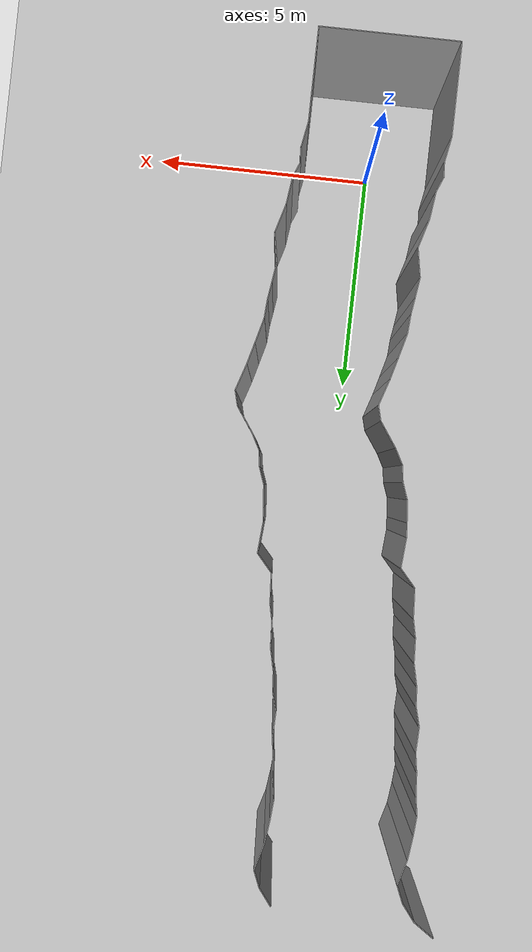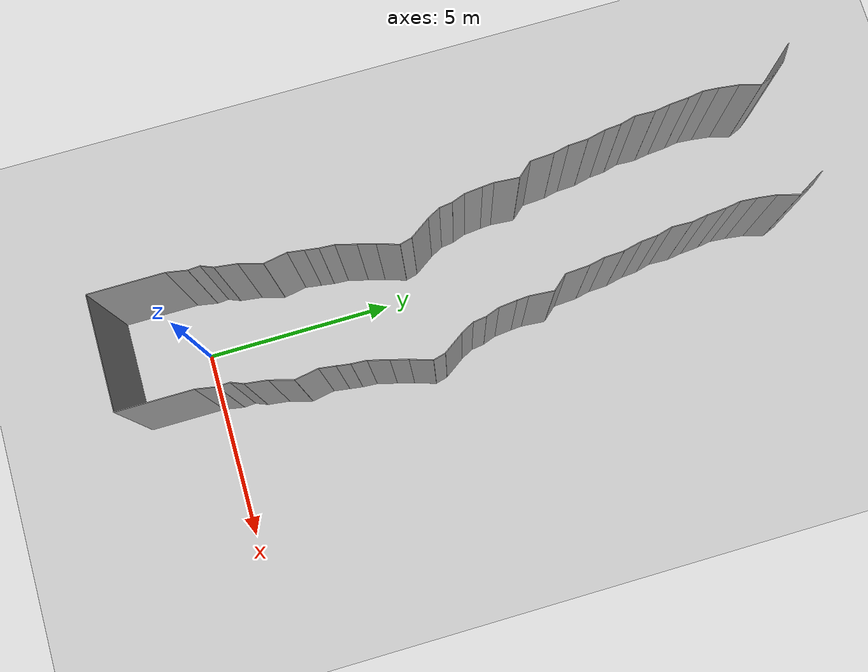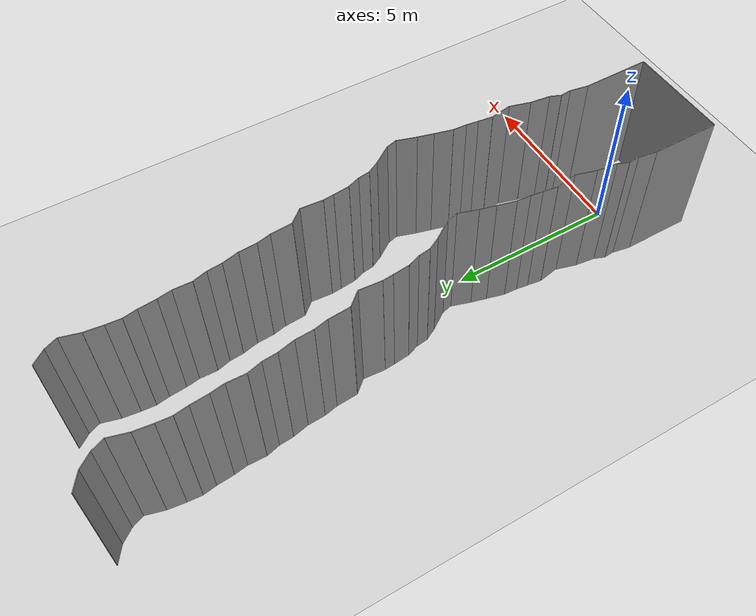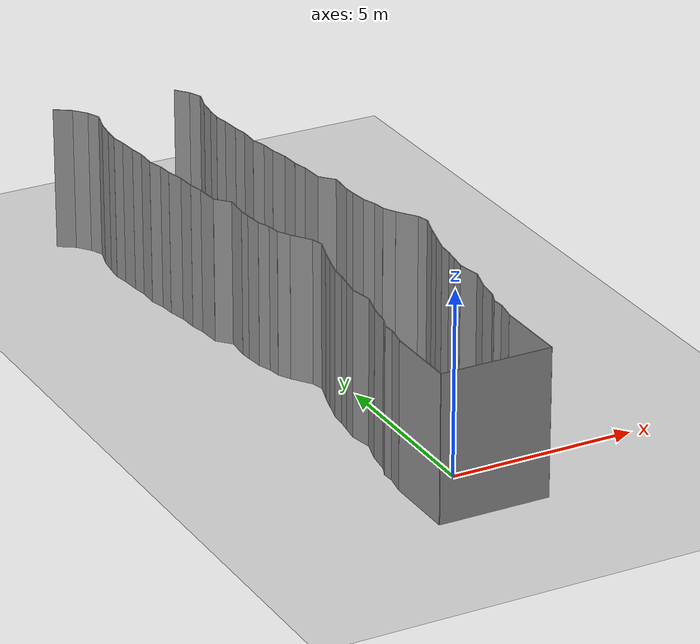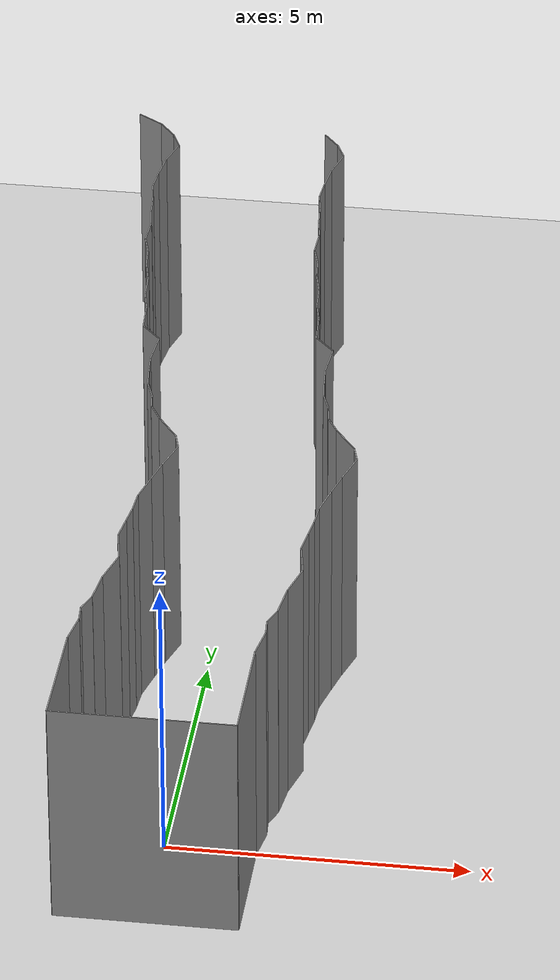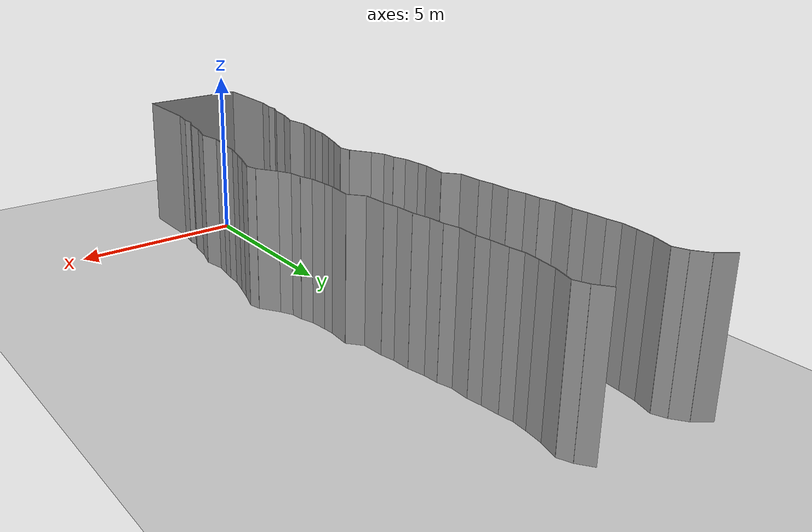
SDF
<sdf version="1.6">
 <world name="default">
  <model name="ground_plane">
   <static>1</static>
   <link name="link">
    <collision name="collision">
     <geometry><plane><normal>0 0 1</normal><size>200 200</size></plane></geometry>
     <surface><friction><ode><mu>100</mu><mu2>50</mu2></ode></friction></surface>
    </collision>
    <visual name="visual">
     <cast_shadows>0</cast_shadows>
     <geometry><plane><normal>0 0 1</normal><size>200 200</size></plane></geometry>
     <material>
      <script><uri>file://media/materials/scripts/gazebo.material</uri><name>Gazebo/Grey</name></script>
     </material>
    </visual>
   </link>
   <pose>0 100 0 0 -0 0</pose>
  </model>
  <model name="wall_back">
   <static>1</static>
   <pose>0.0 -2 2 0.0 0 0.0</pose>
   <link name="link">
    <collision name="collision"><geometry><box><size>3 0.02 4</size></box></geometry></collision>
    <visual name="visual">
     <material>
      <script><name>Gazebo/Grey</name><uri>file://media/materials/scripts/gazebo.material</uri></script>
     </material>
     <geometry><box><size>3 0.02 4</size></box></geometry>
    </visual>
   </link>
  </model>
  <model name="wall_left">
   <static>1</static>
   <pose>1.5 -1 2 0 0 0.00</pose>
   <link name="link">
    <collision name="collision"><geometry><box><size>0.02 2 4</size></box></geometry></collision>
    <visual name="visual">
     <material>
      <script><name>Gazebo/Grey</name><uri>file://media/materials/scripts/gazebo.material</uri></script>
     </material>
     <geometry><box><size>0.02 2 4</size></box></geometry>
    </visual>
   </link>
  </model>
  <model name="wall_right">
   <static>1</static>
   <pose>-1.5 -1 2 0 0 0.00</pose>
   <link name="link">
    <collision name="collision"><geometry><box><size>0.02 2 4</size></box></geometry></collision>
    <visual name="visual">
     <material>
      <script><name>Gazebo/Grey</name><uri>file://media/materials/scripts/gazebo.material</uri></script>
     </material>
     <geometry><box><size>0.02 2 4</size></box></geometry>
    </visual>
   </link>
  </model>
  <model name="wall_0">
   <static>1</static>
   <pose>-1.4510614008440241 0.27226961258177046 2 0 0 -0.17784414263756346</pose>
   <link name="link">
    <collision name="collision"><geometry><box><size>0.02 0.553265680927 4</size></box></geometry></collision>
    <visual name="visual">
     <material>
      <script><name>Gazebo/Grey</name><uri>file://media/materials/scripts/gazebo.material</uri></script>
     </material>
     <geometry><box><size>0.02 0.553265680927 4</size></box></geometry>
    </visual>
   </link>
  </model>
  <model name="wall_1">
   <static>1</static>
   <pose>1.5489385991559759 0.27226961258177046 2 0 0 -0.17784414263756346</pose>
   <link name="link">
    <collision name="collision"><geometry><box><size>0.02 0.553265680927 4</size></box></geometry></collision>
    <visual name="visual">
     <material>
      <script><name>Gazebo/Grey</name><uri>file://media/materials/scripts/gazebo.material</uri></script>
     </material>
     <geometry><box><size>0.02 0.553265680927 4</size></box></geometry>
    </visual>
   </link>
  </model>
  <model name="wall_2">
   <static>1</static>
   <pose>-1.4131889546459946 0.7013423824053996 2 0 0 0.0704567162158204</pose>
   <link name="link">
    <collision name="collision"><geometry><box><size>0.02 0.314386321982 4</size></box></geometry></collision>
    <visual name="visual">
     <material>
      <script><name>Gazebo/Grey</name><uri>file://media/materials/scripts/gazebo.material</uri></script>
     </material>
     <geometry><box><size>0.02 0.314386321982 4</size></box></geometry>
    </visual>
   </link>
  </model>
  <model name="wall_3">
   <static>1</static>
   <pose>1.5868110453540054 0.7013423824053996 2 0 0 0.0704567162158204</pose>
   <link name="link">
    <collision name="collision"><geometry><box><size>0.02 0.314386321982 4</size></box></geometry></collision>
    <visual name="visual">
     <material>
      <script><name>Gazebo/Grey</name><uri>file://media/materials/scripts/gazebo.material</uri></script>
     </material>
     <geometry><box><size>0.02 0.314386321982 4</size></box></geometry>
    </visual>
   </link>
  </model>
  <model name="wall_4">
   <static>1</static>
   <pose>-1.360147717933627 1.015774620193739 2 0 0 -0.3862669164413871</pose>
   <link name="link">
    <collision name="collision"><geometry><box><size>0.02 0.340333274566 4</size></box></geometry></collision>
    <visual name="visual">
     <material>
      <script><name>Gazebo/Grey</name><uri>file://media/materials/scripts/gazebo.material</uri></script>
     </material>
     <geometry><box><size>0.02 0.340333274566 4</size></box></geometry>
    </visual>
   </link>
  </model>
  <model name="wall_5">
   <static>1</static>
   <pose>1.639852282066373 1.015774620193739 2 0 0 -0.3862669164413871</pose>
   <link name="link">
    <collision name="collision"><geometry><box><size>0.02 0.340333274566 4</size></box></geometry></collision>
    <visual name="visual">
     <material>
      <script><name>Gazebo/Grey</name><uri>file://media/materials/scripts/gazebo.material</uri></script>
     </material>
     <geometry><box><size>0.02 0.340333274566 4</size></box></geometry>
    </visual>
   </link>
  </model>
  <model name="wall_6">
   <static>1</static>
   <pose>-1.2584821857065456 1.467698916604298 2 0 0 -0.12693447514914025</pose>
   <link name="link">
    <collision name="collision"><geometry><box><size>0.02 0.593364266375 4</size></box></geometry></collision>
    <visual name="visual">
     <material>
      <script><name>Gazebo/Grey</name><uri>file://media/materials/scripts/gazebo.material</uri></script>
     </material>
     <geometry><box><size>0.02 0.593364266375 4</size></box></geometry>
    </visual>
   </link>
  </model>
  <model name="wall_7">
   <static>1</static>
   <pose>1.7415178142934544 1.467698916604298 2 0 0 -0.12693447514914025</pose>
   <link name="link">
    <collision name="collision"><geometry><box><size>0.02 0.593364266375 4</size></box></geometry></collision>
    <visual name="visual">
     <material>
      <script><name>Gazebo/Grey</name><uri>file://media/materials/scripts/gazebo.material</uri></script>
     </material>
     <geometry><box><size>0.02 0.593364266375 4</size></box></geometry>
    </visual>
   </link>
  </model>
  <model name="wall_8">
   <static>1</static>
   <pose>-1.133552409762259 2.0664932754414114 2 0 0 -0.2794284009162872</pose>
   <link name="link">
    <collision name="collision"><geometry><box><size>0.02 0.633572506954 4</size></box></geometry></collision>
    <visual name="visual">
     <material>
      <script><name>Gazebo/Grey</name><uri>file://media/materials/scripts/gazebo.material</uri></script>
     </material>
     <geometry><box><size>0.02 0.633572506954 4</size></box></geometry>
    </visual>
   </link>
  </model>
  <model name="wall_9">
   <static>1</static>
   <pose>1.866447590237741 2.0664932754414114 2 0 0 -0.2794284009162872</pose>
   <link name="link">
    <collision name="collision"><geometry><box><size>0.02 0.633572506954 4</size></box></geometry></collision>
    <visual name="visual">
     <material>
      <script><name>Gazebo/Grey</name><uri>file://media/materials/scripts/gazebo.material</uri></script>
     </material>
     <geometry><box><size>0.02 0.633572506954 4</size></box></geometry>
    </visual>
   </link>
  </model>
  <model name="wall_10">
   <static>1</static>
   <pose>-1.1017332336920902 2.681833785299214 2 0 0 0.17684936663808962</pose>
   <link name="link">
    <collision name="collision"><geometry><box><size>0.02 0.631532836457 4</size></box></geometry></collision>
    <visual name="visual">
     <material>
      <script><name>Gazebo/Grey</name><uri>file://media/materials/scripts/gazebo.material</uri></script>
     </material>
     <geometry><box><size>0.02 0.631532836457 4</size></box></geometry>
    </visual>
   </link>
  </model>
  <model name="wall_11">
   <static>1</static>
   <pose>1.8982667663079098 2.681833785299214 2 0 0 0.17684936663808962</pose>
   <link name="link">
    <collision name="collision"><geometry><box><size>0.02 0.631532836457 4</size></box></geometry></collision>
    <visual name="visual">
     <material>
      <script><name>Gazebo/Grey</name><uri>file://media/materials/scripts/gazebo.material</uri></script>
     </material>
     <geometry><box><size>0.02 0.631532836457 4</size></box></geometry>
    </visual>
   </link>
  </model>
  <model name="wall_12">
   <static>1</static>
   <pose>-1.1270328265631628 3.20628827869749 2 0 0 -0.14068891273038736</pose>
   <link name="link">
    <collision name="collision"><geometry><box><size>0.02 0.431489530005 4</size></box></geometry></collision>
    <visual name="visual">
     <material>
      <script><name>Gazebo/Grey</name><uri>file://media/materials/scripts/gazebo.material</uri></script>
     </material>
     <geometry><box><size>0.02 0.431489530005 4</size></box></geometry>
    </visual>
   </link>
  </model>
  <model name="wall_13">
   <static>1</static>
   <pose>1.8729671734368372 3.20628827869749 2 0 0 -0.14068891273038736</pose>
   <link name="link">
    <collision name="collision"><geometry><box><size>0.02 0.431489530005 4</size></box></geometry></collision>
    <visual name="visual">
     <material>
      <script><name>Gazebo/Grey</name><uri>file://media/materials/scripts/gazebo.material</uri></script>
     </material>
     <geometry><box><size>0.02 0.431489530005 4</size></box></geometry>
    </visual>
   </link>
  </model>
  <model name="wall_14">
   <static>1</static>
   <pose>-1.0712343176284655 3.5970420367363927 2 0 0 -0.14322367572116126</pose>
   <link name="link">
    <collision name="collision"><geometry><box><size>0.02 0.357946271329 4</size></box></geometry></collision>
    <visual name="visual">
     <material>
      <script><name>Gazebo/Grey</name><uri>file://media/materials/scripts/gazebo.material</uri></script>
     </material>
     <geometry><box><size>0.02 0.357946271329 4</size></box></geometry>
    </visual>
   </link>
  </model>
  <model name="wall_15">
   <static>1</static>
   <pose>1.9287656823715345 3.5970420367363927 2 0 0 -0.14322367572116126</pose>
   <link name="link">
    <collision name="collision"><geometry><box><size>0.02 0.357946271329 4</size></box></geometry></collision>
    <visual name="visual">
     <material>
      <script><name>Gazebo/Grey</name><uri>file://media/materials/scripts/gazebo.material</uri></script>
     </material>
     <geometry><box><size>0.02 0.357946271329 4</size></box></geometry>
    </visual>
   </link>
  </model>
  <model name="wall_16">
   <static>1</static>
   <pose>-1.0328271521532806 3.9739733635034153 2 0 0 -0.06428626909097335</pose>
   <link name="link">
    <collision name="collision"><geometry><box><size>0.02 0.400408494551 4</size></box></geometry></collision>
    <visual name="visual">
     <material>
      <script><name>Gazebo/Grey</name><uri>file://media/materials/scripts/gazebo.material</uri></script>
     </material>
     <geometry><box><size>0.02 0.400408494551 4</size></box></geometry>
    </visual>
   </link>
  </model>
  <model name="wall_17">
   <static>1</static>
   <pose>1.9671728478467194 3.9739733635034153 2 0 0 -0.06428626909097335</pose>
   <link name="link">
    <collision name="collision"><geometry><box><size>0.02 0.400408494551 4</size></box></geometry></collision>
    <visual name="visual">
     <material>
      <script><name>Gazebo/Grey</name><uri>file://media/materials/scripts/gazebo.material</uri></script>
     </material>
     <geometry><box><size>0.02 0.400408494551 4</size></box></geometry>
    </visual>
   </link>
  </model>
  <model name="wall_18">
   <static>1</static>
   <pose>-0.9509388020663676 4.439646964082127 2 0 0 -0.25400612948969653</pose>
   <link name="link">
    <collision name="collision"><geometry><box><size>0.02 0.549393929657 4</size></box></geometry></collision>
    <visual name="visual">
     <material>
      <script><name>Gazebo/Grey</name><uri>file://media/materials/scripts/gazebo.material</uri></script>
     </material>
     <geometry><box><size>0.02 0.549393929657 4</size></box></geometry>
    </visual>
   </link>
  </model>
  <model name="wall_19">
   <static>1</static>
   <pose>2.049061197933632 4.439646964082127 2 0 0 -0.25400612948969653</pose>
   <link name="link">
    <collision name="collision"><geometry><box><size>0.02 0.549393929657 4</size></box></geometry></collision>
    <visual name="visual">
     <material>
      <script><name>Gazebo/Grey</name><uri>file://media/materials/scripts/gazebo.material</uri></script>
     </material>
     <geometry><box><size>0.02 0.549393929657 4</size></box></geometry>
    </visual>
   </link>
  </model>
  <model name="wall_20">
   <static>1</static>
   <pose>-0.8212214706037575 4.930960955705222 2 0 0 -0.26298446407842263</pose>
   <link name="link">
    <collision name="collision"><geometry><box><size>0.02 0.46691546019 4</size></box></geometry></collision>
    <visual name="visual">
     <material>
      <script><name>Gazebo/Grey</name><uri>file://media/materials/scripts/gazebo.material</uri></script>
     </material>
     <geometry><box><size>0.02 0.46691546019 4</size></box></geometry>
    </visual>
   </link>
  </model>
  <model name="wall_21">
   <static>1</static>
   <pose>2.1787785293962427 4.930960955705222 2 0 0 -0.26298446407842263</pose>
   <link name="link">
    <collision name="collision"><geometry><box><size>0.02 0.46691546019 4</size></box></geometry></collision>
    <visual name="visual">
     <material>
      <script><name>Gazebo/Grey</name><uri>file://media/materials/scripts/gazebo.material</uri></script>
     </material>
     <geometry><box><size>0.02 0.46691546019 4</size></box></geometry>
    </visual>
   </link>
  </model>
  <model name="wall_22">
   <static>1</static>
   <pose>-0.6699900881126005 5.4388120153842605 2 0 0 -0.3102376020255669</pose>
   <link name="link">
    <collision name="collision"><geometry><box><size>0.02 0.593156614549 4</size></box></geometry></collision>
    <visual name="visual">
     <material>
      <script><name>Gazebo/Grey</name><uri>file://media/materials/scripts/gazebo.material</uri></script>
     </material>
     <geometry><box><size>0.02 0.593156614549 4</size></box></geometry>
    </visual>
   </link>
  </model>
  <model name="wall_23">
   <static>1</static>
   <pose>2.3300099118873994 5.4388120153842605 2 0 0 -0.3102376020255669</pose>
   <link name="link">
    <collision name="collision"><geometry><box><size>0.02 0.593156614549 4</size></box></geometry></collision>
    <visual name="visual">
     <material>
      <script><name>Gazebo/Grey</name><uri>file://media/materials/scripts/gazebo.material</uri></script>
     </material>
     <geometry><box><size>0.02 0.593156614549 4</size></box></geometry>
    </visual>
   </link>
  </model>
  <model name="wall_24">
   <static>1</static>
   <pose>-0.6206682197158915 5.880611606251649 2 0 0 0.2530765057522197</pose>
   <link name="link">
    <collision name="collision"><geometry><box><size>0.02 0.329246833816 4</size></box></geometry></collision>
    <visual name="visual">
     <material>
      <script><name>Gazebo/Grey</name><uri>file://media/materials/scripts/gazebo.material</uri></script>
     </material>
     <geometry><box><size>0.02 0.329246833816 4</size></box></geometry>
    </visual>
   </link>
  </model>
  <model name="wall_25">
   <static>1</static>
   <pose>2.3793317802841085 5.880611606251649 2 0 0 0.2530765057522197</pose>
   <link name="link">
    <collision name="collision"><geometry><box><size>0.02 0.329246833816 4</size></box></geometry></collision>
    <visual name="visual">
     <material>
      <script><name>Gazebo/Grey</name><uri>file://media/materials/scripts/gazebo.material</uri></script>
     </material>
     <geometry><box><size>0.02 0.329246833816 4</size></box></geometry>
    </visual>
   </link>
  </model>
  <model name="wall_26">
   <static>1</static>
   <pose>-0.8430757390639525 6.302089811399908 2 0 0 0.6048625071166142</pose>
   <link name="link">
    <collision name="collision"><geometry><box><size>0.02 0.637259585892 4</size></box></geometry></collision>
    <visual name="visual">
     <material>
      <script><name>Gazebo/Grey</name><uri>file://media/materials/scripts/gazebo.material</uri></script>
     </material>
     <geometry><box><size>0.02 0.637259585892 4</size></box></geometry>
    </visual>
   </link>
  </model>
  <model name="wall_27">
   <static>1</static>
   <pose>2.1569242609360475 6.302089811399908 2 0 0 0.6048625071166142</pose>
   <link name="link">
    <collision name="collision"><geometry><box><size>0.02 0.637259585892 4</size></box></geometry></collision>
    <visual name="visual">
     <material>
      <script><name>Gazebo/Grey</name><uri>file://media/materials/scripts/gazebo.material</uri></script>
     </material>
     <geometry><box><size>0.02 0.637259585892 4</size></box></geometry>
    </visual>
   </link>
  </model>
  <model name="wall_28">
   <static>1</static>
   <pose>-1.1154163347845298 6.733286023980204 2 0 0 0.49439751091214384</pose>
   <link name="link">
    <collision name="collision"><geometry><box><size>0.02 0.38420156124 4</size></box></geometry></collision>
    <visual name="visual">
     <material>
      <script><name>Gazebo/Grey</name><uri>file://media/materials/scripts/gazebo.material</uri></script>
     </material>
     <geometry><box><size>0.02 0.38420156124 4</size></box></geometry>
    </visual>
   </link>
  </model>
  <model name="wall_29">
   <static>1</static>
   <pose>1.8845836652154702 6.733286023980204 2 0 0 0.49439751091214384</pose>
   <link name="link">
    <collision name="collision"><geometry><box><size>0.02 0.38420156124 4</size></box></geometry></collision>
    <visual name="visual">
     <material>
      <script><name>Gazebo/Grey</name><uri>file://media/materials/scripts/gazebo.material</uri></script>
     </material>
     <geometry><box><size>0.02 0.38420156124 4</size></box></geometry>
    </visual>
   </link>
  </model>
  <model name="wall_30">
   <static>1</static>
   <pose>-1.2306127379001681 7.078196218832997 2 0 0 0.1359178704899804</pose>
   <link name="link">
    <collision name="collision"><geometry><box><size>0.02 0.354898232374 4</size></box></geometry></collision>
    <visual name="visual">
     <material>
      <script><name>Gazebo/Grey</name><uri>file://media/materials/scripts/gazebo.material</uri></script>
     </material>
     <geometry><box><size>0.02 0.354898232374 4</size></box></geometry>
    </visual>
   </link>
  </model>
  <model name="wall_31">
   <static>1</static>
   <pose>1.7693872620998319 7.078196218832997 2 0 0 0.1359178704899804</pose>
   <link name="link">
    <collision name="collision"><geometry><box><size>0.02 0.354898232374 4</size></box></geometry></collision>
    <visual name="visual">
     <material>
      <script><name>Gazebo/Grey</name><uri>file://media/materials/scripts/gazebo.material</uri></script>
     </material>
     <geometry><box><size>0.02 0.354898232374 4</size></box></geometry>
    </visual>
   </link>
  </model>
  <model name="wall_32">
   <static>1</static>
   <pose>-1.3182803285968272 7.4312952756271065 2 0 0 0.3445572357663062</pose>
   <link name="link">
    <collision name="collision"><geometry><box><size>0.02 0.376714319493 4</size></box></geometry></collision>
    <visual name="visual">
     <material>
      <script><name>Gazebo/Grey</name><uri>file://media/materials/scripts/gazebo.material</uri></script>
     </material>
     <geometry><box><size>0.02 0.376714319493 4</size></box></geometry>
    </visual>
   </link>
  </model>
  <model name="wall_33">
   <static>1</static>
   <pose>1.6817196714031728 7.4312952756271065 2 0 0 0.3445572357663062</pose>
   <link name="link">
    <collision name="collision"><geometry><box><size>0.02 0.376714319493 4</size></box></geometry></collision>
    <visual name="visual">
     <material>
      <script><name>Gazebo/Grey</name><uri>file://media/materials/scripts/gazebo.material</uri></script>
     </material>
     <geometry><box><size>0.02 0.376714319493 4</size></box></geometry>
    </visual>
   </link>
  </model>
  <model name="wall_34">
   <static>1</static>
   <pose>-1.4061348706168952 7.847483247230103 2 0 0 0.10108217442688737</pose>
   <link name="link">
    <collision name="collision"><geometry><box><size>0.02 0.480254406274 4</size></box></geometry></collision>
    <visual name="visual">
     <material>
      <script><name>Gazebo/Grey</name><uri>file://media/materials/scripts/gazebo.material</uri></script>
     </material>
     <geometry><box><size>0.02 0.480254406274 4</size></box></geometry>
    </visual>
   </link>
  </model>
  <model name="wall_35">
   <static>1</static>
   <pose>1.5938651293831048 7.847483247230103 2 0 0 0.10108217442688737</pose>
   <link name="link">
    <collision name="collision"><geometry><box><size>0.02 0.480254406274 4</size></box></geometry></collision>
    <visual name="visual">
     <material>
      <script><name>Gazebo/Grey</name><uri>file://media/materials/scripts/gazebo.material</uri></script>
     </material>
     <geometry><box><size>0.02 0.480254406274 4</size></box></geometry>
    </visual>
   </link>
  </model>
  <model name="wall_36">
   <static>1</static>
   <pose>-1.4426236268751231 8.239152183468175 2 0 0 0.08006474513999451</pose>
   <link name="link">
    <collision name="collision"><geometry><box><size>0.02 0.306516820366 4</size></box></geometry></collision>
    <visual name="visual">
     <material>
      <script><name>Gazebo/Grey</name><uri>file://media/materials/scripts/gazebo.material</uri></script>
     </material>
     <geometry><box><size>0.02 0.306516820366 4</size></box></geometry>
    </visual>
   </link>
  </model>
  <model name="wall_37">
   <static>1</static>
   <pose>1.5573763731248769 8.239152183468175 2 0 0 0.08006474513999451</pose>
   <link name="link">
    <collision name="collision"><geometry><box><size>0.02 0.306516820366 4</size></box></geometry></collision>
    <visual name="visual">
     <material>
      <script><name>Gazebo/Grey</name><uri>file://media/materials/scripts/gazebo.material</uri></script>
     </material>
     <geometry><box><size>0.02 0.306516820366 4</size></box></geometry>
    </visual>
   </link>
  </model>
  <model name="wall_38">
   <static>1</static>
   <pose>-1.4296244603228077 8.718072273795189 2 0 0 -0.07728391278805666</pose>
   <link name="link">
    <collision name="collision"><geometry><box><size>0.02 0.654258183048 4</size></box></geometry></collision>
    <visual name="visual">
     <material>
      <script><name>Gazebo/Grey</name><uri>file://media/materials/scripts/gazebo.material</uri></script>
     </material>
     <geometry><box><size>0.02 0.654258183048 4</size></box></geometry>
    </visual>
   </link>
  </model>
  <model name="wall_39">
   <static>1</static>
   <pose>1.5703755396771923 8.718072273795189 2 0 0 -0.07728391278805666</pose>
   <link name="link">
    <collision name="collision"><geometry><box><size>0.02 0.654258183048 4</size></box></geometry></collision>
    <visual name="visual">
     <material>
      <script><name>Gazebo/Grey</name><uri>file://media/materials/scripts/gazebo.material</uri></script>
     </material>
     <geometry><box><size>0.02 0.654258183048 4</size></box></geometry>
    </visual>
   </link>
  </model>
  <model name="wall_40">
   <static>1</static>
   <pose>-1.5703119641842869 9.233145682015286 2 0 0 0.7207409379286189</pose>
   <link name="link">
    <collision name="collision"><geometry><box><size>0.02 0.502905643045 4</size></box></geometry></collision>
    <visual name="visual">
     <material>
      <script><name>Gazebo/Grey</name><uri>file://media/materials/scripts/gazebo.material</uri></script>
     </material>
     <geometry><box><size>0.02 0.502905643045 4</size></box></geometry>
    </visual>
   </link>
  </model>
  <model name="wall_41">
   <static>1</static>
   <pose>1.4296880358157131 9.233145682015286 2 0 0 0.7207409379286189</pose>
   <link name="link">
    <collision name="collision"><geometry><box><size>0.02 0.502905643045 4</size></box></geometry></collision>
    <visual name="visual">
     <material>
      <script><name>Gazebo/Grey</name><uri>file://media/materials/scripts/gazebo.material</uri></script>
     </material>
     <geometry><box><size>0.02 0.502905643045 4</size></box></geometry>
    </visual>
   </link>
  </model>
  <model name="wall_42">
   <static>1</static>
   <pose>-1.7563336963715983 9.73940504404195 2 0 0 0.06318439311915218</pose>
   <link name="link">
    <collision name="collision"><geometry><box><size>0.02 0.635946196708 4</size></box></geometry></collision>
    <visual name="visual">
     <material>
      <script><name>Gazebo/Grey</name><uri>file://media/materials/scripts/gazebo.material</uri></script>
     </material>
     <geometry><box><size>0.02 0.635946196708 4</size></box></geometry>
    </visual>
   </link>
  </model>
  <model name="wall_43">
   <static>1</static>
   <pose>1.2436663036284017 9.73940504404195 2 0 0 0.06318439311915218</pose>
   <link name="link">
    <collision name="collision"><geometry><box><size>0.02 0.635946196708 4</size></box></geometry></collision>
    <visual name="visual">
     <material>
      <script><name>Gazebo/Grey</name><uri>file://media/materials/scripts/gazebo.material</uri></script>
     </material>
     <geometry><box><size>0.02 0.635946196708 4</size></box></geometry>
    </visual>
   </link>
  </model>
  <model name="wall_44">
   <static>1</static>
   <pose>-1.8194577117034247 10.259236486240194 2 0 0 0.2094643616543292</pose>
   <link name="link">
    <collision name="collision"><geometry><box><size>0.02 0.414035507725 4</size></box></geometry></collision>
    <visual name="visual">
     <material>
      <script><name>Gazebo/Grey</name><uri>file://media/materials/scripts/gazebo.material</uri></script>
     </material>
     <geometry><box><size>0.02 0.414035507725 4</size></box></geometry>
    </visual>
   </link>
  </model>
  <model name="wall_45">
   <static>1</static>
   <pose>1.1805422882965753 10.259236486240194 2 0 0 0.2094643616543292</pose>
   <link name="link">
    <collision name="collision"><geometry><box><size>0.02 0.414035507725 4</size></box></geometry></collision>
    <visual name="visual">
     <material>
      <script><name>Gazebo/Grey</name><uri>file://media/materials/scripts/gazebo.material</uri></script>
     </material>
     <geometry><box><size>0.02 0.414035507725 4</size></box></geometry>
    </visual>
   </link>
  </model>
  <model name="wall_46">
   <static>1</static>
   <pose>-1.875421869682316 10.7203639757701 2 0 0 0.049904332648089626</pose>
   <link name="link">
    <collision name="collision"><geometry><box><size>0.02 0.517914063708 4</size></box></geometry></collision>
    <visual name="visual">
     <material>
      <script><name>Gazebo/Grey</name><uri>file://media/materials/scripts/gazebo.material</uri></script>
     </material>
     <geometry><box><size>0.02 0.517914063708 4</size></box></geometry>
    </visual>
   </link>
  </model>
  <model name="wall_47">
   <static>1</static>
   <pose>1.124578130317684 10.7203639757701 2 0 0 0.049904332648089626</pose>
   <link name="link">
    <collision name="collision"><geometry><box><size>0.02 0.517914063708 4</size></box></geometry></collision>
    <visual name="visual">
     <material>
      <script><name>Gazebo/Grey</name><uri>file://media/materials/scripts/gazebo.material</uri></script>
     </material>
     <geometry><box><size>0.02 0.517914063708 4</size></box></geometry>
    </visual>
   </link>
  </model>
  <model name="wall_48">
   <static>1</static>
   <pose>-1.942731686995152 11.219851072159386 2 0 0 0.22210585862176607</pose>
   <link name="link">
    <collision name="collision"><geometry><box><size>0.02 0.493835626928 4</size></box></geometry></collision>
    <visual name="visual">
     <material>
      <script><name>Gazebo/Grey</name><uri>file://media/materials/scripts/gazebo.material</uri></script>
     </material>
     <geometry><box><size>0.02 0.493835626928 4</size></box></geometry>
    </visual>
   </link>
  </model>
  <model name="wall_49">
   <static>1</static>
   <pose>1.057268313004848 11.219851072159386 2 0 0 0.22210585862176607</pose>
   <link name="link">
    <collision name="collision"><geometry><box><size>0.02 0.493835626928 4</size></box></geometry></collision>
    <visual name="visual">
     <material>
      <script><name>Gazebo/Grey</name><uri>file://media/materials/scripts/gazebo.material</uri></script>
     </material>
     <geometry><box><size>0.02 0.493835626928 4</size></box></geometry>
    </visual>
   </link>
  </model>
  <model name="wall_50">
   <static>1</static>
   <pose>-2.013806907833596 11.672866145919334 2 0 0 0.07847216417222873</pose>
   <link name="link">
    <collision name="collision"><geometry><box><size>0.02 0.425635067301 4</size></box></geometry></collision>
    <visual name="visual">
     <material>
      <script><name>Gazebo/Grey</name><uri>file://media/materials/scripts/gazebo.material</uri></script>
     </material>
     <geometry><box><size>0.02 0.425635067301 4</size></box></geometry>
    </visual>
   </link>
  </model>
  <model name="wall_51">
   <static>1</static>
   <pose>0.9861930921664039 11.672866145919334 2 0 0 0.07847216417222873</pose>
   <link name="link">
    <collision name="collision"><geometry><box><size>0.02 0.425635067301 4</size></box></geometry></collision>
    <visual name="visual">
     <material>
      <script><name>Gazebo/Grey</name><uri>file://media/materials/scripts/gazebo.material</uri></script>
     </material>
     <geometry><box><size>0.02 0.425635067301 4</size></box></geometry>
    </visual>
   </link>
  </model>
  <model name="wall_52">
   <static>1</static>
   <pose>-2.084917750806969 12.089637878632406 2 0 0 0.25998764255612705</pose>
   <link name="link">
    <collision name="collision"><geometry><box><size>0.02 0.423449016207 4</size></box></geometry></collision>
    <visual name="visual">
     <material>
      <script><name>Gazebo/Grey</name><uri>file://media/materials/scripts/gazebo.material</uri></script>
     </material>
     <geometry><box><size>0.02 0.423449016207 4</size></box></geometry>
    </visual>
   </link>
  </model>
  <model name="wall_53">
   <static>1</static>
   <pose>0.915082249193031 12.089637878632406 2 0 0 0.25998764255612705</pose>
   <link name="link">
    <collision name="collision"><geometry><box><size>0.02 0.423449016207 4</size></box></geometry></collision>
    <visual name="visual">
     <material>
      <script><name>Gazebo/Grey</name><uri>file://media/materials/scripts/gazebo.material</uri></script>
     </material>
     <geometry><box><size>0.02 0.423449016207 4</size></box></geometry>
    </visual>
   </link>
  </model>
  <model name="wall_54">
   <static>1</static>
   <pose>-2.1308924688883764 12.56192897705406 2 0 0 -0.03156805198859444</pose>
   <link name="link">
    <collision name="collision"><geometry><box><size>0.02 0.535630833246 4</size></box></geometry></collision>
    <visual name="visual">
     <material>
      <script><name>Gazebo/Grey</name><uri>file://media/materials/scripts/gazebo.material</uri></script>
     </material>
     <geometry><box><size>0.02 0.535630833246 4</size></box></geometry>
    </visual>
   </link>
  </model>
  <model name="wall_55">
   <static>1</static>
   <pose>0.8691075311116236 12.56192897705406 2 0 0 -0.03156805198859444</pose>
   <link name="link">
    <collision name="collision"><geometry><box><size>0.02 0.535630833246 4</size></box></geometry></collision>
    <visual name="visual">
     <material>
      <script><name>Gazebo/Grey</name><uri>file://media/materials/scripts/gazebo.material</uri></script>
     </material>
     <geometry><box><size>0.02 0.535630833246 4</size></box></geometry>
    </visual>
   </link>
  </model>
  <model name="wall_56">
   <static>1</static>
   <pose>-2.154161942373587 13.030462414617539 2 0 0 0.1566460467573428</pose>
   <link name="link">
    <collision name="collision"><geometry><box><size>0.02 0.406682296322 4</size></box></geometry></collision>
    <visual name="visual">
     <material>
      <script><name>Gazebo/Grey</name><uri>file://media/materials/scripts/gazebo.material</uri></script>
     </material>
     <geometry><box><size>0.02 0.406682296322 4</size></box></geometry>
    </visual>
   </link>
  </model>
  <model name="wall_57">
   <static>1</static>
   <pose>0.8458380576264131 13.030462414617539 2 0 0 0.1566460467573428</pose>
   <link name="link">
    <collision name="collision"><geometry><box><size>0.02 0.406682296322 4</size></box></geometry></collision>
    <visual name="visual">
     <material>
      <script><name>Gazebo/Grey</name><uri>file://media/materials/scripts/gazebo.material</uri></script>
     </material>
     <geometry><box><size>0.02 0.406682296322 4</size></box></geometry>
    </visual>
   </link>
  </model>
  <model name="wall_58">
   <static>1</static>
   <pose>-2.2064051174617987 13.487109349726365 2 0 0 0.0800516176216397</pose>
   <link name="link">
    <collision name="collision"><geometry><box><size>0.02 0.51323455383 4</size></box></geometry></collision>
    <visual name="visual">
     <material>
      <script><name>Gazebo/Grey</name><uri>file://media/materials/scripts/gazebo.material</uri></script>
     </material>
     <geometry><box><size>0.02 0.51323455383 4</size></box></geometry>
    </visual>
   </link>
  </model>
  <model name="wall_59">
   <static>1</static>
   <pose>0.7935948825382013 13.487109349726365 2 0 0 0.0800516176216397</pose>
   <link name="link">
    <collision name="collision"><geometry><box><size>0.02 0.51323455383 4</size></box></geometry></collision>
    <visual name="visual">
     <material>
      <script><name>Gazebo/Grey</name><uri>file://media/materials/scripts/gazebo.material</uri></script>
     </material>
     <geometry><box><size>0.02 0.51323455383 4</size></box></geometry>
    </visual>
   </link>
  </model>
  <model name="wall_60">
   <static>1</static>
   <pose>-2.2584367095775075 13.939643765363027 2 0 0 0.15881715963549048</pose>
   <link name="link">
    <collision name="collision"><geometry><box><size>0.02 0.398492886814 4</size></box></geometry></collision>
    <visual name="visual">
     <material>
      <script><name>Gazebo/Grey</name><uri>file://media/materials/scripts/gazebo.material</uri></script>
     </material>
     <geometry><box><size>0.02 0.398492886814 4</size></box></geometry>
    </visual>
   </link>
  </model>
  <model name="wall_61">
   <static>1</static>
   <pose>0.7415632904224925 13.939643765363027 2 0 0 0.15881715963549048</pose>
   <link name="link">
    <collision name="collision"><geometry><box><size>0.02 0.398492886814 4</size></box></geometry></collision>
    <visual name="visual">
     <material>
      <script><name>Gazebo/Grey</name><uri>file://media/materials/scripts/gazebo.material</uri></script>
     </material>
     <geometry><box><size>0.02 0.398492886814 4</size></box></geometry>
    </visual>
   </link>
  </model>
  <model name="wall_62">
   <static>1</static>
   <pose>-2.273502406085278 14.346934054915321 2 0 0 -0.07794716738088803</pose>
   <link name="link">
    <collision name="collision"><geometry><box><size>0.02 0.422385215286 4</size></box></geometry></collision>
    <visual name="visual">
     <material>
      <script><name>Gazebo/Grey</name><uri>file://media/materials/scripts/gazebo.material</uri></script>
     </material>
     <geometry><box><size>0.02 0.422385215286 4</size></box></geometry>
    </visual>
   </link>
  </model>
  <model name="wall_63">
   <static>1</static>
   <pose>0.726497593914722 14.346934054915321 2 0 0 -0.07794716738088803</pose>
   <link name="link">
    <collision name="collision"><geometry><box><size>0.02 0.422385215286 4</size></box></geometry></collision>
    <visual name="visual">
     <material>
      <script><name>Gazebo/Grey</name><uri>file://media/materials/scripts/gazebo.material</uri></script>
     </material>
     <geometry><box><size>0.02 0.422385215286 4</size></box></geometry>
    </visual>
   </link>
  </model>
  <model name="wall_64">
   <static>1</static>
   <pose>-2.2248271673228044 14.81456398776168 2 0 0 -0.12471965528714725</pose>
   <link name="link">
    <collision name="collision"><geometry><box><size>0.02 0.518182094539 4</size></box></geometry></collision>
    <visual name="visual">
     <material>
      <script><name>Gazebo/Grey</name><uri>file://media/materials/scripts/gazebo.material</uri></script>
     </material>
     <geometry><box><size>0.02 0.518182094539 4</size></box></geometry>
    </visual>
   </link>
  </model>
  <model name="wall_65">
   <static>1</static>
   <pose>0.7751728326771956 14.81456398776168 2 0 0 -0.12471965528714725</pose>
   <link name="link">
    <collision name="collision"><geometry><box><size>0.02 0.518182094539 4</size></box></geometry></collision>
    <visual name="visual">
     <material>
      <script><name>Gazebo/Grey</name><uri>file://media/materials/scripts/gazebo.material</uri></script>
     </material>
     <geometry><box><size>0.02 0.518182094539 4</size></box></geometry>
    </visual>
   </link>
  </model>
  <model name="wall_66">
   <static>1</static>
   <pose>-2.1158525231552496 15.345142546608834 2 0 0 -0.2735667307128934</pose>
   <link name="link">
    <collision name="collision"><geometry><box><size>0.02 0.568126654679 4</size></box></geometry></collision>
    <visual name="visual">
     <material>
      <script><name>Gazebo/Grey</name><uri>file://media/materials/scripts/gazebo.material</uri></script>
     </material>
     <geometry><box><size>0.02 0.568126654679 4</size></box></geometry>
    </visual>
   </link>
  </model>
  <model name="wall_67">
   <static>1</static>
   <pose>0.8841474768447504 15.345142546608834 2 0 0 -0.2735667307128934</pose>
   <link name="link">
    <collision name="collision"><geometry><box><size>0.02 0.568126654679 4</size></box></geometry></collision>
    <visual name="visual">
     <material>
      <script><name>Gazebo/Grey</name><uri>file://media/materials/scripts/gazebo.material</uri></script>
     </material>
     <geometry><box><size>0.02 0.568126654679 4</size></box></geometry>
    </visual>
   </link>
  </model>
  <model name="wall_68">
   <static>1</static>
   <pose>-2.1128247132251623 15.796494428916368 2 0 0 0.3929300302445417</pose>
   <link name="link">
    <collision name="collision"><geometry><box><size>0.02 0.385047867322 4</size></box></geometry></collision>
    <visual name="visual">
     <material>
      <script><name>Gazebo/Grey</name><uri>file://media/materials/scripts/gazebo.material</uri></script>
     </material>
     <geometry><box><size>0.02 0.385047867322 4</size></box></geometry>
    </visual>
   </link>
  </model>
  <model name="wall_69">
   <static>1</static>
   <pose>0.8871752867748377 15.796494428916368 2 0 0 0.3929300302445417</pose>
   <link name="link">
    <collision name="collision"><geometry><box><size>0.02 0.385047867322 4</size></box></geometry></collision>
    <visual name="visual">
     <material>
      <script><name>Gazebo/Grey</name><uri>file://media/materials/scripts/gazebo.material</uri></script>
     </material>
     <geometry><box><size>0.02 0.385047867322 4</size></box></geometry>
    </visual>
   </link>
  </model>
  <model name="wall_70">
   <static>1</static>
   <pose>-2.3271195613443876 16.157484691660088 2 0 0 0.6546738767870675</pose>
   <link name="link">
    <collision name="collision"><geometry><box><size>0.02 0.461743859274 4</size></box></geometry></collision>
    <visual name="visual">
     <material>
      <script><name>Gazebo/Grey</name><uri>file://media/materials/scripts/gazebo.material</uri></script>
     </material>
     <geometry><box><size>0.02 0.461743859274 4</size></box></geometry>
    </visual>
   </link>
  </model>
  <model name="wall_71">
   <static>1</static>
   <pose>0.6728804386556124 16.157484691660088 2 0 0 0.6546738767870675</pose>
   <link name="link">
    <collision name="collision"><geometry><box><size>0.02 0.461743859274 4</size></box></geometry></collision>
    <visual name="visual">
     <material>
      <script><name>Gazebo/Grey</name><uri>file://media/materials/scripts/gazebo.material</uri></script>
     </material>
     <geometry><box><size>0.02 0.461743859274 4</size></box></geometry>
    </visual>
   </link>
  </model>
  <model name="wall_72">
   <static>1</static>
   <pose>-2.686708989568177 16.49051149660358 2 0 0 0.9706262165268534</pose>
   <link name="link">
    <collision name="collision"><geometry><box><size>0.02 0.530782549284 4</size></box></geometry></collision>
    <visual name="visual">
     <material>
      <script><name>Gazebo/Grey</name><uri>file://media/materials/scripts/gazebo.material</uri></script>
     </material>
     <geometry><box><size>0.02 0.530782549284 4</size></box></geometry>
    </visual>
   </link>
  </model>
 </world>
</sdf>
